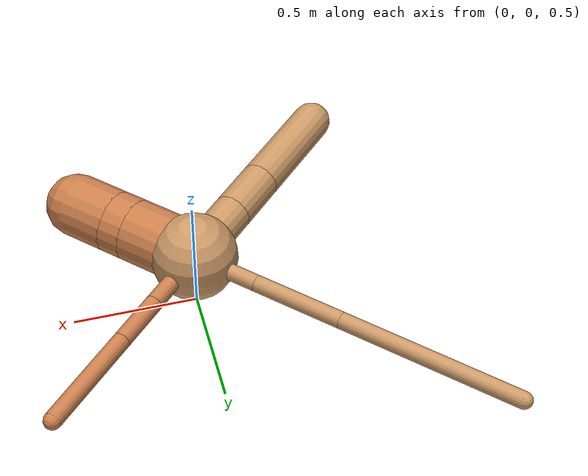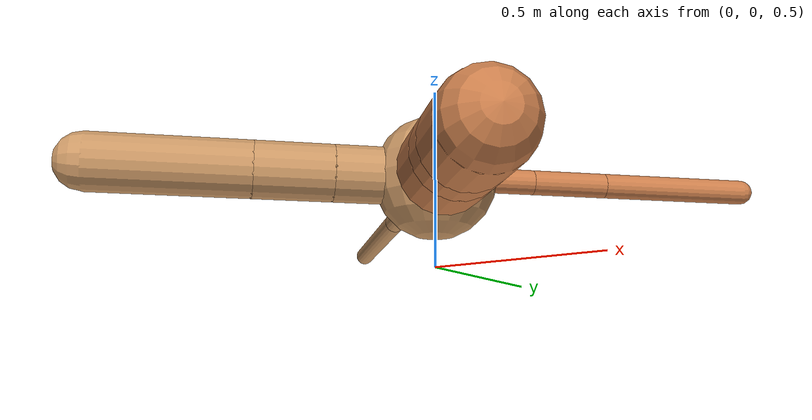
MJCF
<?xml version="1.0" ?>
<mujoco model="ant">

	<compiler angle="degree" coordinate="local" inertiafromgeom="true"/>

	<option integrator="RK4" timestep="0.01"/>

	<custom>

		<numeric data="0.0 0.0 0.55 1.0 0.0 0.0 0.0 0.0 1.0 0.0 -1.0 0.0 -1.0 0.0 1.0" name="init_qpos"/>

	</custom>

	<default>

		<joint armature="1" damping="1" limited="true"/>

		<geom conaffinity="0" condim="3" density="5.0" friction="1.5 0.1 0.1" margin="0.01" rgba="0.8 0.6 0.4 1"/>

	</default>

	<worldbody>

		<body name="torso" pos="0 0 0.75">

			<geom name="torso_geom" pos="0 0 0" size="0.17301580635687813" type="sphere"/>

			<!--joint armature="0" damping="0" limited="false" margin="0.01" name="root" pos="0 0 0" type="free"/-->

			<body name="front_left_leg" pos="0 0 0">

				<geom fromto="0 0 0 0.2 0.2 0" name="aux_1_geom" size="0.03487110752293826" type="capsule" rgba=".8 .5 .3 1"/>

				<body name="aux_1" pos="0.2 0.2 0">

					<joint axis="0 0 1" name="hip_1" pos="0.0 0.0 0.0" range="-40 40" type="hinge"/>

					<geom fromto="0 0 0 0.15087775992624936 0.15087775992624936 0" name="left_leg_geom" size="0.03487110752293826" type="capsule" rgba=".8 .5 .3 1"/>

					<body pos="0.15087775992624936 0.15087775992624936 0" name="front_left_foot">

						<joint axis="-1 1 0" name="ankle_1" pos="0.0 0.0 0.0" range="30 100" type="hinge"/>

						<geom fromto="0 0 0 0.3017555198524987 0.3017555198524987 0" name="left_ankle_geom" size="0.03487110752293826" type="capsule" rgba=".8 .5 .3 1"/>

					</body>

				</body>

			</body>

			<body name="front_right_leg" pos="0 0 0">

				<geom fromto="0 0 0 -0.2 0.2 0" name="aux_2_geom" size="0.03334603752435851" type="capsule"/>

				<body name="aux_2" pos="-0.2 0.2 0">

					<joint axis="0 0 1" name="hip_2" pos="0.0 0.0 0.0" range="-40 40" type="hinge"/>

					<geom fromto="0 0 0 -0.26175774935490514 0.26175774935490514 0" name="right_leg_geom" size="0.03334603752435851" type="capsule"/>

					<body pos="-0.26175774935490514 0.26175774935490514 0" name="front_right_foot">

						<joint axis="1 1 0" name="ankle_2" pos="0.0 0.0 0.0" range="-100 -30" type="hinge"/>

						<geom fromto="0 0 0 -0.5235154987098103 0.5235154987098103 0" name="right_ankle_geom" size="0.03334603752435851" type="capsule"/>

					</body>

				</body>

			</body>

			<body name="left_back_leg" pos="0 0 0">

				<geom fromto="0 0 0 -0.2 -0.2 0" name="aux_3_geom" size="0.07979497166852623" type="capsule"/>

				<body name="aux_3" pos="-0.2 -0.2 0">

					<joint axis="0 0 1" name="hip_3" pos="0.0 0.0 0.0" range="-40 40" type="hinge"/>

					<geom fromto="0 0 0 -0.1530268607369535 -0.1530268607369535 0" name="back_leg_geom" size="0.07979497166852623" type="capsule"/>

					<body pos="-0.1530268607369535 -0.1530268607369535 0" name="left_back_foot">

						<joint axis="-1 1 0" name="ankle_3" pos="0.0 0.0 0.0" range="-100 -30" type="hinge"/>

						<geom fromto="0 0 0 -0.306053721473907 -0.306053721473907 0" name="third_ankle_geom" size="0.07979497166852623" type="capsule"/>

					</body>

				</body>

			</body>

			<body name="right_back_leg" pos="0 0 0">

				<geom fromto="0 0 0 0.2 -0.2 0" name="aux_4_geom" size="0.12854792760138836" type="capsule" rgba=".8 .5 .3 1"/>

				<body name="aux_4" pos="0.2 -0.2 0">

					<joint axis="0 0 1" name="hip_4" pos="0.0 0.0 0.0" range="-40 40" type="hinge"/>

					<geom fromto="0 0 0 0.06569124771029007 -0.06569124771029007 0" name="rightback_leg_geom" size="0.12854792760138836" type="capsule" rgba=".8 .5 .3 1"/>

					<body pos="0.06569124771029007 -0.06569124771029007 0" name="right_back_foot">

						<joint axis="1 1 0" name="ankle_4" pos="0.0 0.0 0.0" range="30 100" type="hinge"/>

						<geom fromto="0 0 0 0.13138249542058014 -0.13138249542058014 0" name="fourth_ankle_geom" size="0.12854792760138836" type="capsule" rgba=".8 .5 .3 1"/>

					</body>

				</body>

			</body>

		</body>

	</worldbody>

	<actuator>

		<motor ctrllimited="true" ctrlrange="-1.0 1.0" joint="hip_4" gear="150"/>

		<motor ctrllimited="true" ctrlrange="-1.0 1.0" joint="ankle_4" gear="150"/>

		<motor ctrllimited="true" ctrlrange="-1.0 1.0" joint="hip_1" gear="150"/>

		<motor ctrllimited="true" ctrlrange="-1.0 1.0" joint="ankle_1" gear="150"/>

		<motor ctrllimited="true" ctrlrange="-1.0 1.0" joint="hip_2" gear="150"/>

		<motor ctrllimited="true" ctrlrange="-1.0 1.0" joint="ankle_2" gear="150"/>

		<motor ctrllimited="true" ctrlrange="-1.0 1.0" joint="hip_3" gear="150"/>

		<motor ctrllimited="true" ctrlrange="-1.0 1.0" joint="ankle_3" gear="150"/>

	</actuator>

</mujoco>
